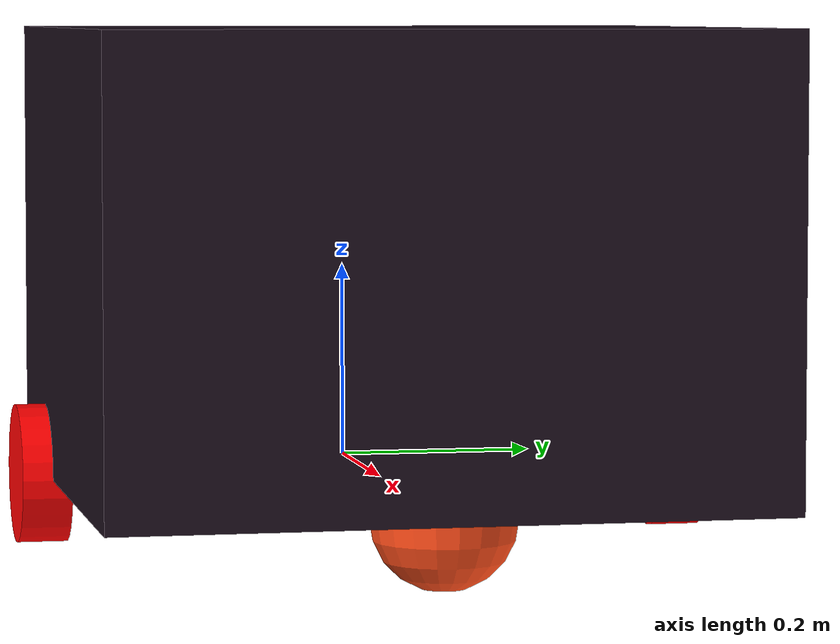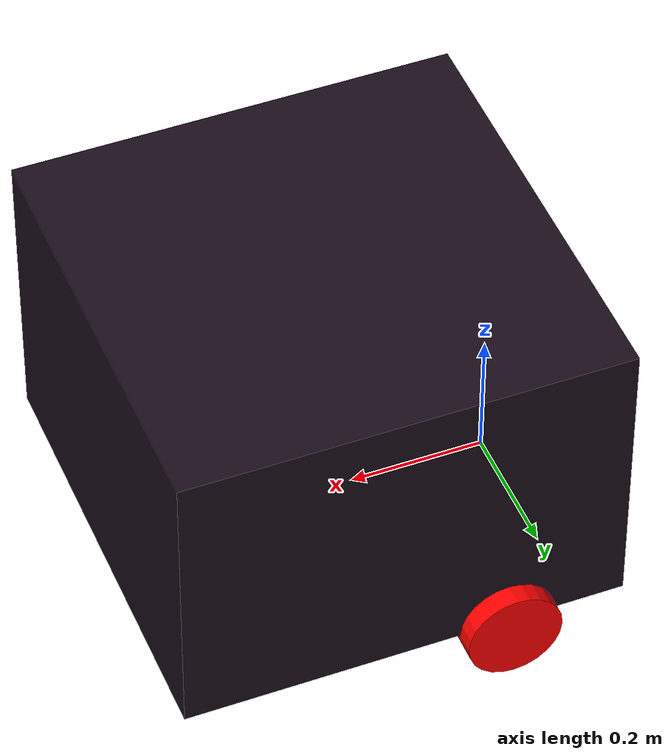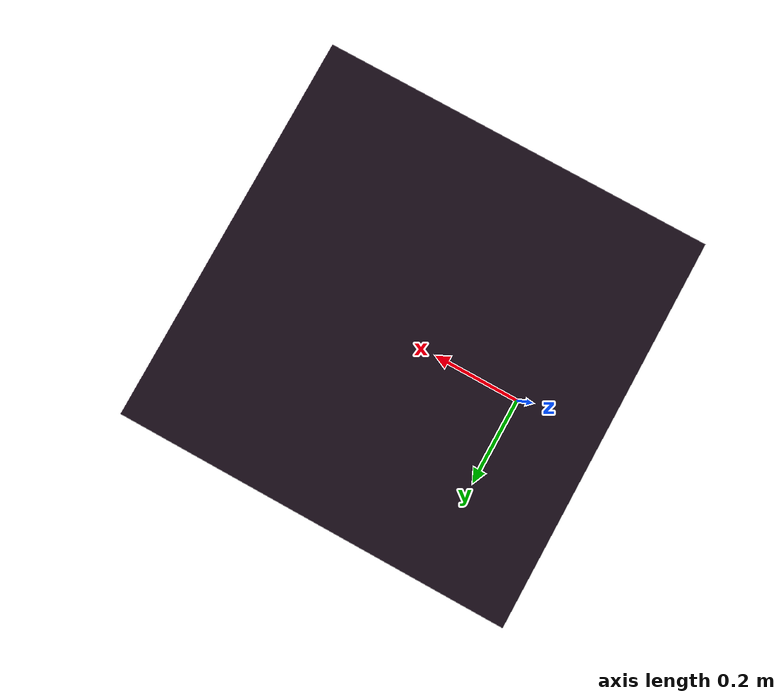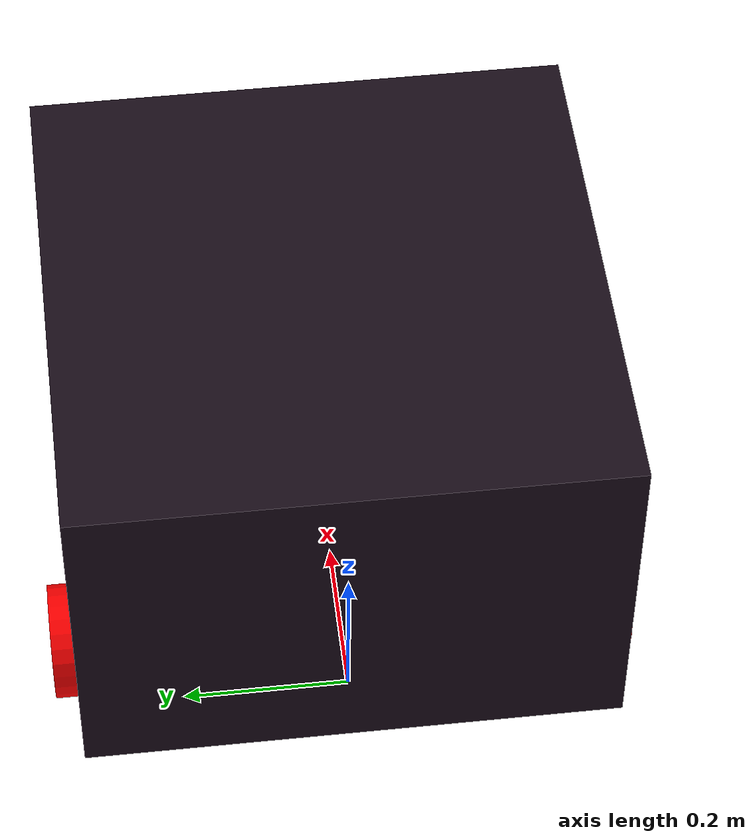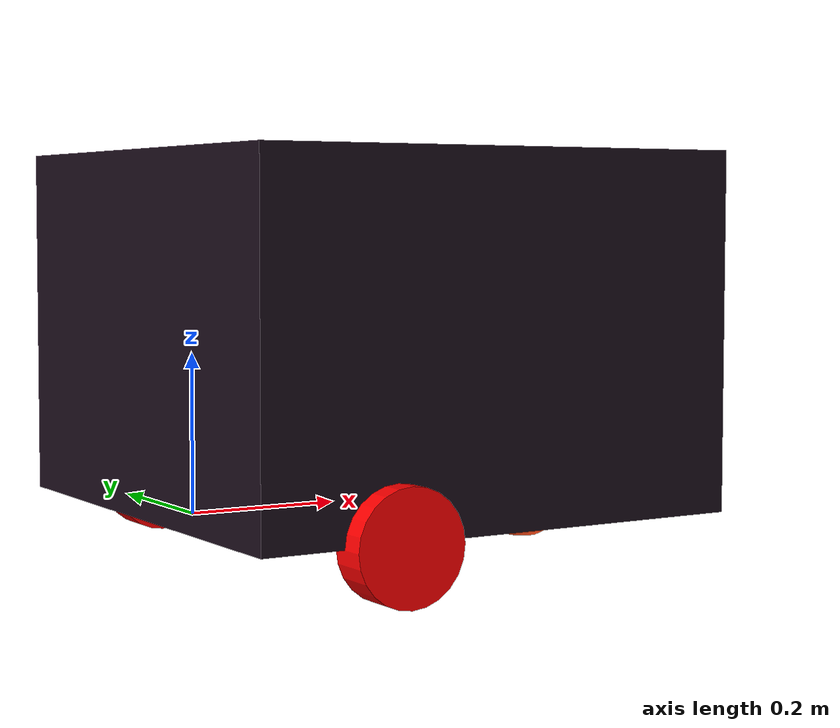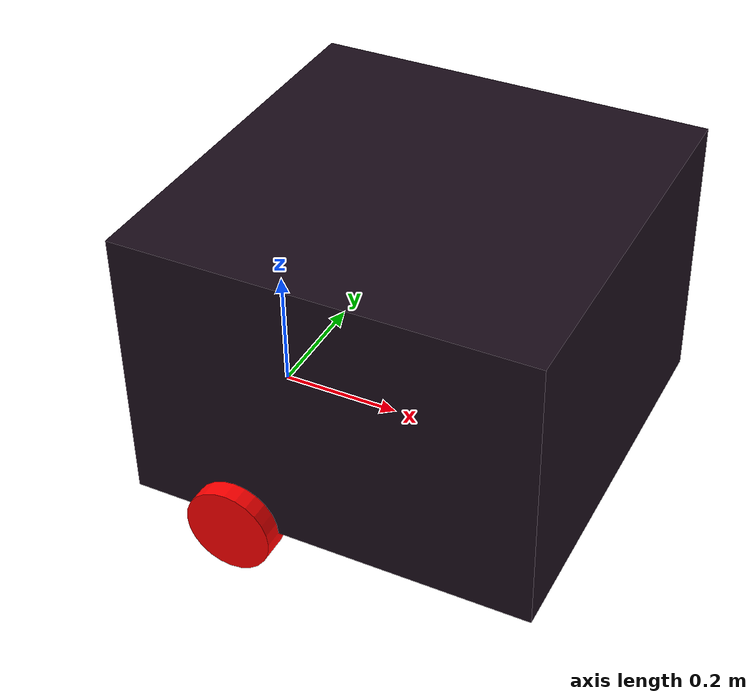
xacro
<?xml version="1.0"?>
<robot xmlns:xacro="http://www.ros.org/wiki/xacro" >

    <xacro:include filename="inertial_macros.xacro"/>

    <material name="white">
        <color rgba="0.85 0.9 0.8 1" />
    </material>

    <material name="orange">
        <color rgba="1 0.3 0.1 1"/>
    </material>

    <material name="blue">
        <color rgba="0.2 0.2 1 1"/>
    </material>

    <material name="black">
        <color rgba="0.1 0.05 0.1 1"/>
    </material>

    <material name="red">
        <color rgba="1 0 0 1"/>
    </material>

    <!-- BASE LINK -->

    <link name="base_link">

    </link>

    <!-- BASE_FOOTPRINT LINK -->

    <joint name="base_footprint_joint" type="fixed">
        <parent link="base_link"/>
        <child link="base_footprint"/>
        <origin xyz="0 0 0" rpy="0 0 0"/>
    </joint>

    <link name="base_footprint">
    </link>

    <!-- CHASSIS LINK -->

    <joint name="chassis_joint" type="fixed">
        <parent link="base_link"/>
        <child link="chassis"/>
        <origin xyz="-0.1 0 0"/>
    </joint>

    <link name="chassis">
        <visual>
            <origin xyz="0.35 0 0.225"/>
            <geometry>
                <box size="0.65 0.65 0.45"/>
            </geometry>
            <material name="black"/>
        </visual>
        <collision>
            <origin xyz="0.315 0 0.225"/>
            <geometry>
                <box size="0.65 0.65 0.45"/>
            </geometry>
        </collision>
        <xacro:inertial_box mass="6" x="0.65" y="0.65" z="0.45">
            <origin xyz="0.315 0 0.225" rpy="0 0 0"/>
        </xacro:inertial_box>
    </link>

    <gazebo reference="chassis">
        <material>Gazebo/Black</material>
    </gazebo>

    <!-- LEFT WHEEL LINK -->

    <joint name="left_back_wheel_joint" type="continuous">
        <parent link="base_link"/>
        <child link="left_back_wheel"/>
        <origin xyz="0.10 0.33 0" rpy="-${pi/2} 0 0" />
        <axis xyz="0 0 1"/>
    </joint>

    <link name="left_back_wheel">
        <visual>
            <geometry>
                <cylinder radius="0.07" length="0.05"/>
            </geometry>
            <material name="red"/>
        </visual>
        <collision>
            <geometry>
                <sphere radius="0.07"/>
            </geometry>
        </collision>
        <xacro:inertial_cylinder mass="2" length="0.05" radius="0.07">
            <origin xyz="0 0 0" rpy="0 0 0"/>
        </xacro:inertial_cylinder>
    </link>

    <gazebo reference="left_back_wheel">
        <material>Gazebo/Red</material>
    </gazebo>

    <!-- RIGHT WHEEL LINK -->

    <joint name="right_back_wheel_joint" type="continuous">
        <parent link="base_link"/>
        <child link="right_back_wheel"/>
        <origin xyz="0.10 -0.33 0" rpy="${pi/2} 0 0" />
        <axis xyz="0 0 -1"/>
    </joint>

    <link name="right_back_wheel">
        <visual>
            <geometry>
                <cylinder radius="0.07" length="0.05"/>
            </geometry>
            <material name="red"/>
        </visual>
        <collision>
            <geometry>
                <sphere radius="0.07"/>
            </geometry>
        </collision>
    <xacro:inertial_cylinder mass="2" length="0.05" radius="0.07">
            <origin xyz="0 0 0" rpy="0 0 0"/>
        </xacro:inertial_cylinder>
    </link>

    <gazebo reference="right_back_wheel">
        <material>Gazebo/Red</material>
    </gazebo>

    <!-- CASTER WHEEL LINK -->

    <joint name="caster_wheel_joint" type="fixed">
        <parent link="chassis"/>
        <child link="caster_wheel"/>
        <origin xyz="0.60 0 0"/>
    </joint>

    <link name="caster_wheel">
        <visual>
            <geometry>
                <sphere radius="0.07"/>
            </geometry>
            <material name="orange"/>
        </visual>
        <collision>
            <geometry>
                <sphere radius="0.07"/>
            </geometry>
        </collision>
        <xacro:inertial_sphere mass="0.3" radius="0.07">
            <origin xyz="0 0 0" rpy="0 0 0"/>
        </xacro:inertial_sphere>
    </link>

    <gazebo reference="caster_wheel">
        <material>Gazebo/Black</material>
        <mu1 value="0.02"/>
        <mu2 value="0.02"/>
    </gazebo>

</robot>
